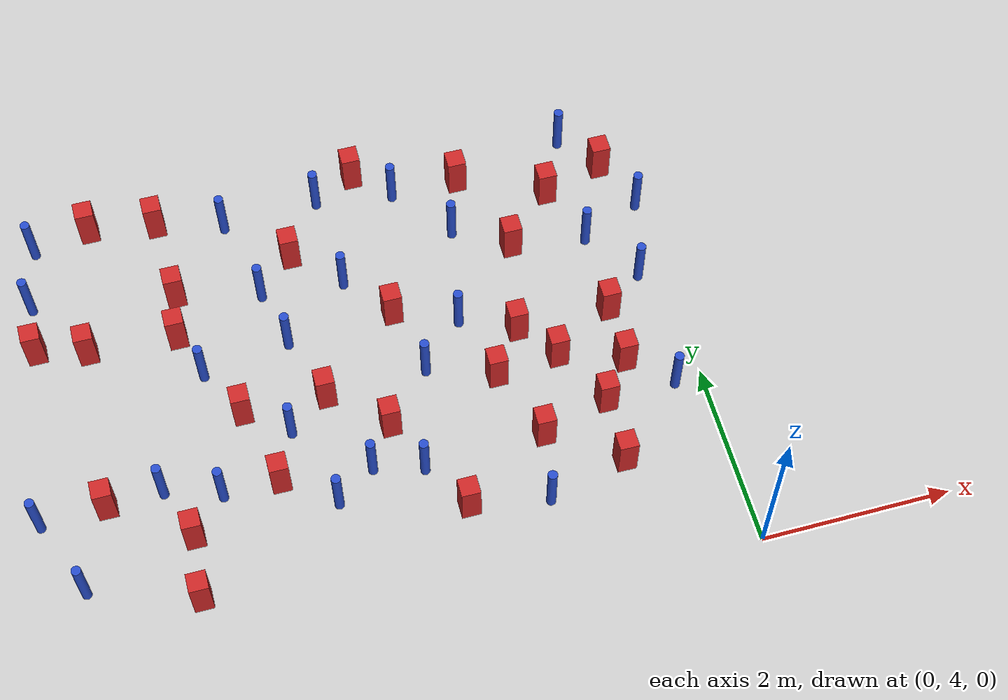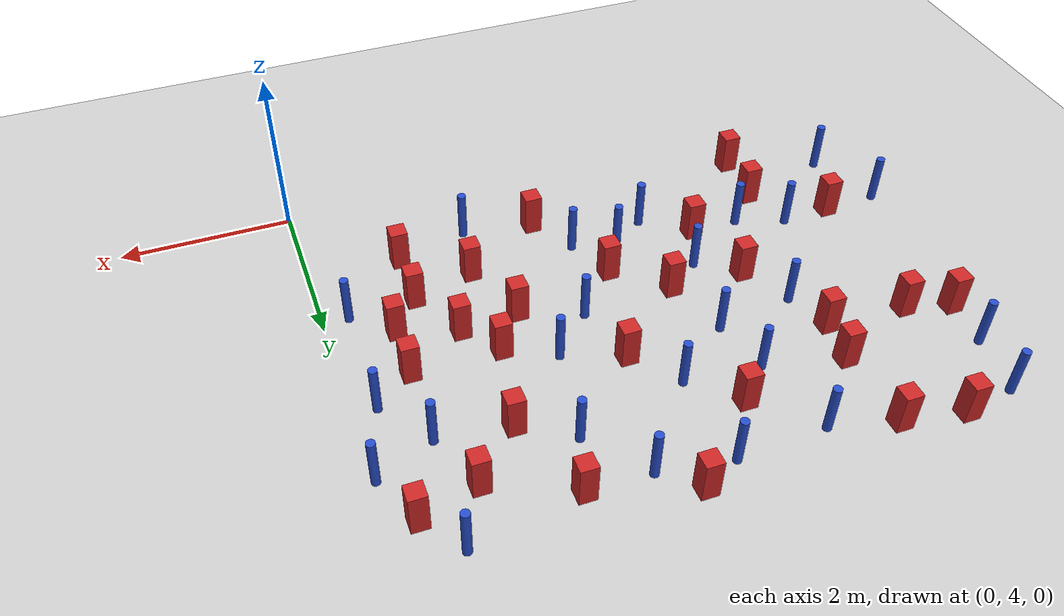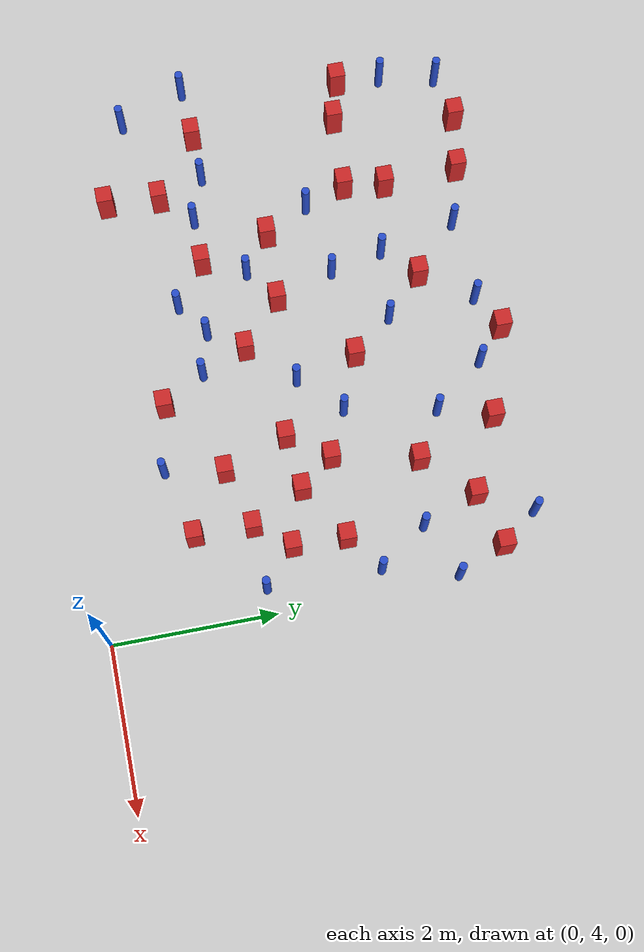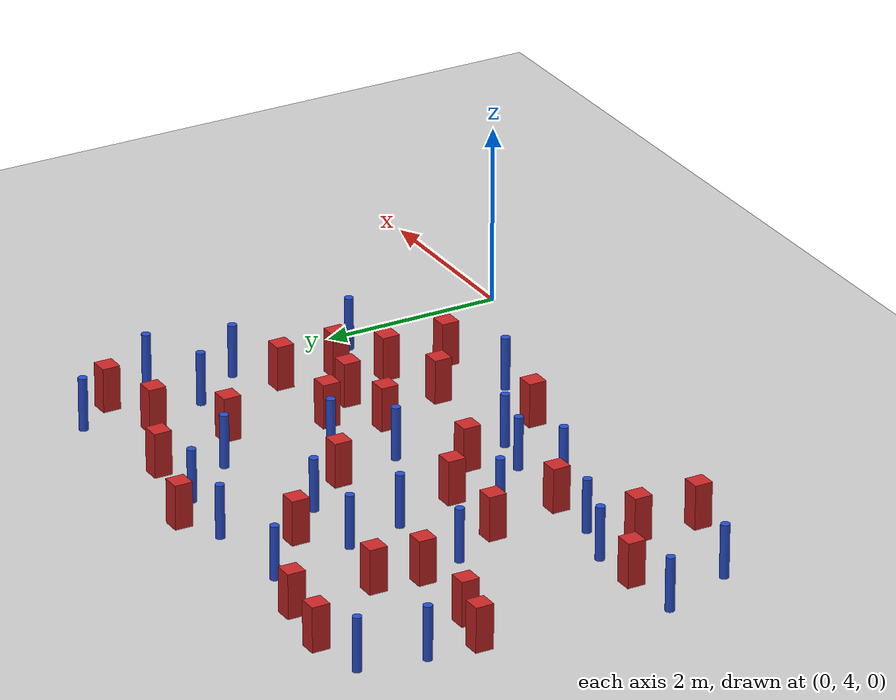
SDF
<sdf version="1.6">
 <world name="default">
  <model name="ground_plane">
   <static>1</static>
   <link name="link">
    <collision name="collision">
     <geometry><plane><normal>0 0 1</normal><size>100 100</size></plane></geometry>
     <surface><friction><ode><mu>100</mu><mu2>50</mu2></ode></friction></surface>
    </collision>
    <visual name="visual">
     <cast_shadows>0</cast_shadows>
     <geometry><plane><normal>0 0 1</normal><size>100 100</size></plane></geometry>
     <material>
      <ambient>1.0 1.0 1.0 1.0</ambient>
      <diffuse>0.8 0.8 0.8 1.0</diffuse>
      <specular>0.01 0.01 0.01 1.000000</specular>
     </material>
    </visual>
   </link>
  </model>
  <model name="pole_obstacle6">
   <static>true</static>
   <pose>-6.68948350225 8.57907107979 -9.47619616065e-06 5.49618799737e-07 2.36310414065e-07 -1.55090534796e-07</pose>
   <link name="link">
    <pose>0 0 0.3 0 -0 0</pose>
    <inertial>
     <mass>1</mass>
     <inertia><ixx>0.145833</ixx><ixy>0</ixy><ixz>0</ixz><iyy>0.145833</iyy><iyz>0</iyz><izz>0.125</izz></inertia>
    </inertial>
    <collision name="collision">
     <geometry><cylinder><radius>0.05</radius><length>.6</length></cylinder></geometry>
    </collision>
    <visual name="visual">
     <geometry><cylinder><radius>0.05</radius><length>.6</length></cylinder></geometry>
     <material>
      <script><name>Gazebo/Blue</name><uri>file://media/materials/scripts/gazebo.material</uri></script>
     </material>
    </visual>
   </link>
  </model>
  <model name="square_post_obstacle8">
   <static>true</static>
   <pose>-1.73617687077 6.9707020237 -6.11067671241e-07 -5.50515727128e-06 -8.79689657224e-07 2.37013304536e-05</pose>
   <link name="link">
    <pose>0 0 0.25 0 -0 0</pose>
    <inertial>
     <mass>100</mass>
     <inertia>
      <ixx>0.166667</ixx>
      <ixy>0</ixy>
      <ixz>0</ixz>
      <iyy>0.166667</iyy>
      <iyz>0</iyz>
      <izz>0.166667</izz>
     </inertia>
    </inertial>
    <collision name="collision"><geometry><box><size>.2 .2 .5</size></box></geometry></collision>
    <visual name="visual">
     <geometry><box><size>.2 .2 .5</size></box></geometry>
     <material>
      <script><name>Gazebo/Red</name><uri>file://media/materials/scripts/gazebo.material</uri></script>
     </material>
    </visual>
   </link>
  </model>
  <model name="square_post_obstacle11">
   <static>true</static>
   <pose>-4.53768418567 5.86658288188 -6.11067671241e-07 -5.50515727128e-06 -8.79689657224e-07 2.37013304536e-05</pose>
   <link name="link">
    <pose>0 0 0.25 0 -0 0</pose>
    <inertial>
     <mass>100</mass>
     <inertia>
      <ixx>0.166667</ixx>
      <ixy>0</ixy>
      <ixz>0</ixz>
      <iyy>0.166667</iyy>
      <iyz>0</iyz>
      <izz>0.166667</izz>
     </inertia>
    </inertial>
    <collision name="collision"><geometry><box><size>.2 .2 .5</size></box></geometry></collision>
    <visual name="visual">
     <geometry><box><size>.2 .2 .5</size></box></geometry>
     <material>
      <script><name>Gazebo/Red</name><uri>file://media/materials/scripts/gazebo.material</uri></script>
     </material>
    </visual>
   </link>
  </model>
  <model name="pole_obstacle19">
   <static>true</static>
   <pose>-6.97491790486 6.00762410917 -9.47619616065e-06 5.49618799737e-07 2.36310414037e-07 -1.55090534814e-07</pose>
   <link name="link">
    <pose>0 0 0.3 0 -0 0</pose>
    <inertial>
     <mass>1</mass>
     <inertia><ixx>0.145833</ixx><ixy>0</ixy><ixz>0</ixz><iyy>0.145833</iyy><iyz>0</iyz><izz>0.125</izz></inertia>
    </inertial>
    <collision name="collision">
     <geometry><cylinder><radius>0.05</radius><length>.6</length></cylinder></geometry>
    </collision>
    <visual name="visual">
     <geometry><cylinder><radius>0.05</radius><length>.6</length></cylinder></geometry>
     <material>
      <script><name>Gazebo/Blue</name><uri>file://media/materials/scripts/gazebo.material</uri></script>
     </material>
    </visual>
   </link>
  </model>
  <model name="pole_obstacle29">
   <static>true</static>
   <pose>-2.60865008319 9.01231032678 -9.4761961606e-06 5.49618799729e-07 2.36310414e-07 -1.55090534824e-07</pose>
   <link name="link">
    <pose>0 0 0.3 0 -0 0</pose>
    <inertial>
     <mass>1</mass>
     <inertia><ixx>0.145833</ixx><ixy>0</ixy><ixz>0</ixz><iyy>0.145833</iyy><iyz>0</iyz><izz>0.125</izz></inertia>
    </inertial>
    <collision name="collision">
     <geometry><cylinder><radius>0.05</radius><length>.6</length></cylinder></geometry>
    </collision>
    <visual name="visual">
     <geometry><cylinder><radius>0.05</radius><length>.6</length></cylinder></geometry>
     <material>
      <script><name>Gazebo/Blue</name><uri>file://media/materials/scripts/gazebo.material</uri></script>
     </material>
    </visual>
   </link>
  </model>
  <model name="square_post_obstacle23">
   <static>true</static>
   <pose>-1.40937178551 6.54757160745 -6.11067671241e-07 -5.50515727128e-06 -8.79689657224e-07 2.37013304536e-05</pose>
   <link name="link">
    <pose>0 0 0.25 0 -0 0</pose>
    <inertial>
     <mass>100</mass>
     <inertia>
      <ixx>0.166667</ixx>
      <ixy>0</ixy>
      <ixz>0</ixz>
      <iyy>0.166667</iyy>
      <iyz>0</iyz>
      <izz>0.166667</izz>
     </inertia>
    </inertial>
    <collision name="collision"><geometry><box><size>.2 .2 .5</size></box></geometry></collision>
    <visual name="visual">
     <geometry><box><size>.2 .2 .5</size></box></geometry>
     <material>
      <script><name>Gazebo/Red</name><uri>file://media/materials/scripts/gazebo.material</uri></script>
     </material>
    </visual>
   </link>
  </model>
  <model name="square_post_obstacle26">
   <static>true</static>
   <pose>-1.5133203125 8.01290717009 -6.11067671241e-07 -5.50515727128e-06 -8.79689657224e-07 2.37013304536e-05</pose>
   <link name="link">
    <pose>0 0 0.25 0 -0 0</pose>
    <inertial>
     <mass>100</mass>
     <inertia>
      <ixx>0.166667</ixx>
      <ixy>0</ixy>
      <ixz>0</ixz>
      <iyy>0.166667</iyy>
      <iyz>0</iyz>
      <izz>0.166667</izz>
     </inertia>
    </inertial>
    <collision name="collision"><geometry><box><size>.2 .2 .5</size></box></geometry></collision>
    <visual name="visual">
     <geometry><box><size>.2 .2 .5</size></box></geometry>
     <material>
      <script><name>Gazebo/Red</name><uri>file://media/materials/scripts/gazebo.material</uri></script>
     </material>
    </visual>
   </link>
  </model>
  <model name="pole_obstacle32">
   <static>true</static>
   <pose>-4.31000271178 6.39564912685 -9.47619616065e-06 5.49618799737e-07 2.36310414037e-07 -1.55090534814e-07</pose>
   <link name="link">
    <pose>0 0 0.3 0 -0 0</pose>
    <inertial>
     <mass>1</mass>
     <inertia><ixx>0.145833</ixx><ixy>0</ixy><ixz>0</ixz><iyy>0.145833</iyy><iyz>0</iyz><izz>0.125</izz></inertia>
    </inertial>
    <collision name="collision">
     <geometry><cylinder><radius>0.05</radius><length>.6</length></cylinder></geometry>
    </collision>
    <visual name="visual">
     <geometry><cylinder><radius>0.05</radius><length>.6</length></cylinder></geometry>
     <material>
      <script><name>Gazebo/Blue</name><uri>file://media/materials/scripts/gazebo.material</uri></script>
     </material>
    </visual>
   </link>
  </model>
  <model name="square_post_obstacle28">
   <static>true</static>
   <pose>-5.49644595359 5.48308350134 -6.11067671241e-07 -5.50515727128e-06 -8.79689657224e-07 2.37013304536e-05</pose>
   <link name="link">
    <pose>0 0 0.25 0 -0 0</pose>
    <inertial>
     <mass>100</mass>
     <inertia>
      <ixx>0.166667</ixx>
      <ixy>0</ixy>
      <ixz>0</ixz>
      <iyy>0.166667</iyy>
      <iyz>0</iyz>
      <izz>0.166667</izz>
     </inertia>
    </inertial>
    <collision name="collision"><geometry><box><size>.2 .2 .5</size></box></geometry></collision>
    <visual name="visual">
     <geometry><box><size>.2 .2 .5</size></box></geometry>
     <material>
      <script><name>Gazebo/Red</name><uri>file://media/materials/scripts/gazebo.material</uri></script>
     </material>
    </visual>
   </link>
  </model>
  <model name="pole_obstacle33">
   <static>true</static>
   <pose>-4.12117602522 7.44639903596 -9.47619616065e-06 5.49618799737e-07 2.36310414037e-07 -1.55090534814e-07</pose>
   <link name="link">
    <pose>0 0 0.3 0 -0 0</pose>
    <inertial>
     <mass>1</mass>
     <inertia><ixx>0.145833</ixx><ixy>0</ixy><ixz>0</ixz><iyy>0.145833</iyy><iyz>0</iyz><izz>0.125</izz></inertia>
    </inertial>
    <collision name="collision">
     <geometry><cylinder><radius>0.05</radius><length>.6</length></cylinder></geometry>
    </collision>
    <visual name="visual">
     <geometry><cylinder><radius>0.05</radius><length>.6</length></cylinder></geometry>
     <material>
      <script><name>Gazebo/Blue</name><uri>file://media/materials/scripts/gazebo.material</uri></script>
     </material>
    </visual>
   </link>
  </model>
  <model name="square_post_obstacle30">
   <static>true</static>
   <pose>-3.87234864193 8.49808763571 -6.11067671241e-07 -5.50515727128e-06 -8.79689657224e-07 2.37013304536e-05</pose>
   <link name="link">
    <pose>0 0 0.25 0 -0 0</pose>
    <inertial>
     <mass>100</mass>
     <inertia>
      <ixx>0.166667</ixx>
      <ixy>0</ixy>
      <ixz>0</ixz>
      <iyy>0.166667</iyy>
      <iyz>0</iyz>
      <izz>0.166667</izz>
     </inertia>
    </inertial>
    <collision name="collision"><geometry><box><size>.2 .2 .5</size></box></geometry></collision>
    <visual name="visual">
     <geometry><box><size>.2 .2 .5</size></box></geometry>
     <material>
      <script><name>Gazebo/Red</name><uri>file://media/materials/scripts/gazebo.material</uri></script>
     </material>
    </visual>
   </link>
  </model>
  <model name="pole_obstacle41">
   <static>true</static>
   <pose>-5.13265383365 5.86492897946 -9.47619616065e-06 5.49618799737e-07 2.36310414037e-07 -1.55090534814e-07</pose>
   <link name="link">
    <pose>0 0 0.3 0 -0 0</pose>
    <inertial>
     <mass>1</mass>
     <inertia><ixx>0.145833</ixx><ixy>0</ixy><ixz>0</ixz><iyy>0.145833</iyy><iyz>0</iyz><izz>0.125</izz></inertia>
    </inertial>
    <collision name="collision">
     <geometry><cylinder><radius>0.05</radius><length>.6</length></cylinder></geometry>
    </collision>
    <visual name="visual">
     <geometry><cylinder><radius>0.05</radius><length>.6</length></cylinder></geometry>
     <material>
      <script><name>Gazebo/Blue</name><uri>file://media/materials/scripts/gazebo.material</uri></script>
     </material>
    </visual>
   </link>
  </model>
  <model name="pole_obstacle43">
   <static>true</static>
   <pose>-3.59772897499 5.76761094473 -9.47619616065e-06 5.49618799738e-07 2.3631041406e-07 -1.55090534801e-07</pose>
   <link name="link">
    <pose>0 0 0.3 0 -0 0</pose>
    <inertial>
     <mass>1</mass>
     <inertia><ixx>0.145833</ixx><ixy>0</ixy><ixz>0</ixz><iyy>0.145833</iyy><iyz>0</iyz><izz>0.125</izz></inertia>
    </inertial>
    <collision name="collision">
     <geometry><cylinder><radius>0.05</radius><length>.6</length></cylinder></geometry>
    </collision>
    <visual name="visual">
     <geometry><cylinder><radius>0.05</radius><length>.6</length></cylinder></geometry>
     <material>
      <script><name>Gazebo/Blue</name><uri>file://media/materials/scripts/gazebo.material</uri></script>
     </material>
    </visual>
   </link>
  </model>
  <model name="pole_obstacle57">
   <static>true</static>
   <pose>-0.62816462132 9.23487591375 -9.47619616065e-06 5.49618799737e-07 2.36310414038e-07 -1.55090534813e-07</pose>
   <link name="link">
    <pose>0 0 0.3 0 -0 0</pose>
    <inertial>
     <mass>1</mass>
     <inertia><ixx>0.145833</ixx><ixy>0</ixy><ixz>0</ixz><iyy>0.145833</iyy><iyz>0</iyz><izz>0.125</izz></inertia>
    </inertial>
    <collision name="collision">
     <geometry><cylinder><radius>0.05</radius><length>.6</length></cylinder></geometry>
    </collision>
    <visual name="visual">
     <geometry><cylinder><radius>0.05</radius><length>.6</length></cylinder></geometry>
     <material>
      <script><name>Gazebo/Blue</name><uri>file://media/materials/scripts/gazebo.material</uri></script>
     </material>
    </visual>
   </link>
  </model>
  <model name="pole_obstacle58">
   <static>true</static>
   <pose>-0.696575415242 7.89770977077 -9.47619616065e-06 5.49618799737e-07 2.36310414065e-07 -1.55090534796e-07</pose>
   <link name="link">
    <pose>0 0 0.3 0 -0 0</pose>
    <inertial>
     <mass>1</mass>
     <inertia><ixx>0.145833</ixx><ixy>0</ixy><ixz>0</ixz><iyy>0.145833</iyy><iyz>0</iyz><izz>0.125</izz></inertia>
    </inertial>
    <collision name="collision">
     <geometry><cylinder><radius>0.05</radius><length>.6</length></cylinder></geometry>
    </collision>
    <visual name="visual">
     <geometry><cylinder><radius>0.05</radius><length>.6</length></cylinder></geometry>
     <material>
      <script><name>Gazebo/Blue</name><uri>file://media/materials/scripts/gazebo.material</uri></script>
     </material>
    </visual>
   </link>
  </model>
  <model name="square_post_obstacle45">
   <static>true</static>
   <pose>-0.958018034965 8.58951679383 -6.11067671241e-07 -5.50515727128e-06 -8.79689657224e-07 2.37013304536e-05</pose>
   <link name="link">
    <pose>0 0 0.25 0 -0 0</pose>
    <inertial>
     <mass>100</mass>
     <inertia>
      <ixx>0.166667</ixx>
      <ixy>0</ixy>
      <ixz>0</ixz>
      <iyy>0.166667</iyy>
      <iyz>0</iyz>
      <izz>0.166667</izz>
     </inertia>
    </inertial>
    <collision name="collision"><geometry><box><size>.2 .2 .5</size></box></geometry></collision>
    <visual name="visual">
     <geometry><box><size>.2 .2 .5</size></box></geometry>
     <material>
      <script><name>Gazebo/Red</name><uri>file://media/materials/scripts/gazebo.material</uri></script>
     </material>
    </visual>
   </link>
  </model>
  <model name="square_post_obstacle47">
   <static>true</static>
   <pose>-1.87746923019 9.00634286019 -6.11067671241e-07 -5.50515727128e-06 -8.79689657224e-07 2.37013304536e-05</pose>
   <link name="link">
    <pose>0 0 0.25 0 -0 0</pose>
    <inertial>
     <mass>100</mass>
     <inertia>
      <ixx>0.166667</ixx>
      <ixy>0</ixy>
      <ixz>0</ixz>
      <iyy>0.166667</iyy>
      <iyz>0</iyz>
      <izz>0.166667</izz>
     </inertia>
    </inertial>
    <collision name="collision"><geometry><box><size>.2 .2 .5</size></box></geometry></collision>
    <visual name="visual">
     <geometry><box><size>.2 .2 .5</size></box></geometry>
     <material>
      <script><name>Gazebo/Red</name><uri>file://media/materials/scripts/gazebo.material</uri></script>
     </material>
    </visual>
   </link>
  </model>
  <model name="pole_obstacle65">
   <static>true</static>
   <pose>-5.71199273015 6.057088107 -9.47619616065e-06 5.49618799737e-07 2.36310414037e-07 -1.55090534814e-07</pose>
   <link name="link">
    <pose>0 0 0.3 0 -0 0</pose>
    <inertial>
     <mass>1</mass>
     <inertia><ixx>0.145833</ixx><ixy>0</ixy><ixz>0</ixz><iyy>0.145833</iyy><iyz>0</iyz><izz>0.125</izz></inertia>
    </inertial>
    <collision name="collision">
     <geometry><cylinder><radius>0.05</radius><length>.6</length></cylinder></geometry>
    </collision>
    <visual name="visual">
     <geometry><cylinder><radius>0.05</radius><length>.6</length></cylinder></geometry>
     <material>
      <script><name>Gazebo/Blue</name><uri>file://media/materials/scripts/gazebo.material</uri></script>
     </material>
    </visual>
   </link>
  </model>
  <model name="square_post_obstacle51">
   <static>true</static>
   <pose>-0.722067783515 6.96273240908 -6.11067671241e-07 -5.50515727128e-06 -8.79689657224e-07 2.37013304536e-05</pose>
   <link name="link">
    <pose>0 0 0.25 0 -0 0</pose>
    <inertial>
     <mass>100</mass>
     <inertia>
      <ixx>0.166667</ixx>
      <ixy>0</ixy>
      <ixz>0</ixz>
      <iyy>0.166667</iyy>
      <iyz>0</iyz>
      <izz>0.166667</izz>
     </inertia>
    </inertial>
    <collision name="collision"><geometry><box><size>.2 .2 .5</size></box></geometry></collision>
    <visual name="visual">
     <geometry><box><size>.2 .2 .5</size></box></geometry>
     <material>
      <script><name>Gazebo/Red</name><uri>file://media/materials/scripts/gazebo.material</uri></script>
     </material>
    </visual>
   </link>
  </model>
  <model name="pole_obstacle82">
   <static>true</static>
   <pose>-5.06186464293 7.2954607931 -9.47619616065e-06 5.49618799737e-07 2.36310414037e-07 -1.55090534814e-07</pose>
   <link name="link">
    <pose>0 0 0.3 0 -0 0</pose>
    <inertial>
     <mass>1</mass>
     <inertia><ixx>0.145833</ixx><ixy>0</ixy><ixz>0</ixz><iyy>0.145833</iyy><iyz>0</iyz><izz>0.125</izz></inertia>
    </inertial>
    <collision name="collision">
     <geometry><cylinder><radius>0.05</radius><length>.6</length></cylinder></geometry>
    </collision>
    <visual name="visual">
     <geometry><cylinder><radius>0.05</radius><length>.6</length></cylinder></geometry>
     <material>
      <script><name>Gazebo/Blue</name><uri>file://media/materials/scripts/gazebo.material</uri></script>
     </material>
    </visual>
   </link>
  </model>
  <model name="square_post_obstacle72">
   <static>true</static>
   <pose>-3.87537074599 6.70423240617 -6.11067671241e-07 -5.50515727128e-06 -8.79689657224e-07 2.37013304536e-05</pose>
   <link name="link">
    <pose>0 0 0.25 0 -0 0</pose>
    <inertial>
     <mass>100</mass>
     <inertia>
      <ixx>0.166667</ixx>
      <ixy>0</ixy>
      <ixz>0</ixz>
      <iyy>0.166667</iyy>
      <iyz>0</iyz>
      <izz>0.166667</izz>
     </inertia>
    </inertial>
    <collision name="collision"><geometry><box><size>.2 .2 .5</size></box></geometry></collision>
    <visual name="visual">
     <geometry><box><size>.2 .2 .5</size></box></geometry>
     <material>
      <script><name>Gazebo/Red</name><uri>file://media/materials/scripts/gazebo.material</uri></script>
     </material>
    </visual>
   </link>
  </model>
  <model name="square_post_obstacle82">
   <static>true</static>
   <pose>-1.06783085861 5.89339742532 -6.11067671241e-07 -5.50515727128e-06 -8.79689657224e-07 2.37013304536e-05</pose>
   <link name="link">
    <pose>0 0 0.25 0 -0 0</pose>
    <inertial>
     <mass>100</mass>
     <inertia>
      <ixx>0.166667</ixx>
      <ixy>0</ixy>
      <ixz>0</ixz>
      <iyy>0.166667</iyy>
      <iyz>0</iyz>
      <izz>0.166667</izz>
     </inertia>
    </inertial>
    <collision name="collision"><geometry><box><size>.2 .2 .5</size></box></geometry></collision>
    <visual name="visual">
     <geometry><box><size>.2 .2 .5</size></box></geometry>
     <material>
      <script><name>Gazebo/Red</name><uri>file://media/materials/scripts/gazebo.material</uri></script>
     </material>
    </visual>
   </link>
  </model>
  <model name="square_post_obstacle84">
   <static>true</static>
   <pose>-1.80079966404 5.68414034855 -6.11067671241e-07 -5.50515727128e-06 -8.79689657224e-07 2.37013304536e-05</pose>
   <link name="link">
    <pose>0 0 0.25 0 -0 0</pose>
    <inertial>
     <mass>100</mass>
     <inertia>
      <ixx>0.166667</ixx>
      <ixy>0</ixy>
      <ixz>0</ixz>
      <iyy>0.166667</iyy>
      <iyz>0</iyz>
      <izz>0.166667</izz>
     </inertia>
    </inertial>
    <collision name="collision"><geometry><box><size>.2 .2 .5</size></box></geometry></collision>
    <visual name="visual">
     <geometry><box><size>.2 .2 .5</size></box></geometry>
     <material>
      <script><name>Gazebo/Red</name><uri>file://media/materials/scripts/gazebo.material</uri></script>
     </material>
    </visual>
   </link>
  </model>
  <model name="pole_obstacle91">
   <static>true</static>
   <pose>-3.44651027617 9.13476570649 -9.4761961606e-06 5.49618799729e-07 2.36310414e-07 -1.55090534824e-07</pose>
   <link name="link">
    <pose>0 0 0.3 0 -0 0</pose>
    <inertial>
     <mass>1</mass>
     <inertia><ixx>0.145833</ixx><ixy>0</ixy><ixz>0</ixz><iyy>0.145833</iyy><iyz>0</iyz><izz>0.125</izz></inertia>
    </inertial>
    <collision name="collision">
     <geometry><cylinder><radius>0.05</radius><length>.6</length></cylinder></geometry>
    </collision>
    <visual name="visual">
     <geometry><cylinder><radius>0.05</radius><length>.6</length></cylinder></geometry>
     <material>
      <script><name>Gazebo/Blue</name><uri>file://media/materials/scripts/gazebo.material</uri></script>
     </material>
    </visual>
   </link>
  </model>
  <model name="square_post_obstacle86">
   <static>true</static>
   <pose>-5.54675294454 4.80907476312 -6.11067671241e-07 -5.50515727128e-06 -8.79689657224e-07 2.37013304536e-05</pose>
   <link name="link">
    <pose>0 0 0.25 0 -0 0</pose>
    <inertial>
     <mass>100</mass>
     <inertia>
      <ixx>0.166667</ixx>
      <ixy>0</ixy>
      <ixz>0</ixz>
      <iyy>0.166667</iyy>
      <iyz>0</iyz>
      <izz>0.166667</izz>
     </inertia>
    </inertial>
    <collision name="collision"><geometry><box><size>.2 .2 .5</size></box></geometry></collision>
    <visual name="visual">
     <geometry><box><size>.2 .2 .5</size></box></geometry>
     <material>
      <script><name>Gazebo/Red</name><uri>file://media/materials/scripts/gazebo.material</uri></script>
     </material>
    </visual>
   </link>
  </model>
  <model name="pole_obstacle97">
   <static>true</static>
   <pose>-0.301202601631 5.92056603571 -9.47619616065e-06 5.49618799737e-07 2.36310414065e-07 -1.55090534796e-07</pose>
   <link name="link">
    <pose>0 0 0.3 0 -0 0</pose>
    <inertial>
     <mass>1</mass>
     <inertia><ixx>0.145833</ixx><ixy>0</ixy><ixz>0</ixz><iyy>0.145833</iyy><iyz>0</iyz><izz>0.125</izz></inertia>
    </inertial>
    <collision name="collision">
     <geometry><cylinder><radius>0.05</radius><length>.6</length></cylinder></geometry>
    </collision>
    <visual name="visual">
     <geometry><cylinder><radius>0.05</radius><length>.6</length></cylinder></geometry>
     <material>
      <script><name>Gazebo/Blue</name><uri>file://media/materials/scripts/gazebo.material</uri></script>
     </material>
    </visual>
   </link>
  </model>
  <model name="square_post_obstacle91">
   <static>true</static>
   <pose>-6.29160225455 6.03764779244 -6.11067671241e-07 -5.50515727128e-06 -8.79689657224e-07 2.37013304536e-05</pose>
   <link name="link">
    <pose>0 0 0.25 0 -0 0</pose>
    <inertial>
     <mass>100</mass>
     <inertia>
      <ixx>0.166667</ixx>
      <ixy>0</ixy>
      <ixz>0</ixz>
      <iyy>0.166667</iyy>
      <iyz>0</iyz>
      <izz>0.166667</izz>
     </inertia>
    </inertial>
    <collision name="collision"><geometry><box><size>.2 .2 .5</size></box></geometry></collision>
    <visual name="visual">
     <geometry><box><size>.2 .2 .5</size></box></geometry>
     <material>
      <script><name>Gazebo/Red</name><uri>file://media/materials/scripts/gazebo.material</uri></script>
     </material>
    </visual>
   </link>
  </model>
  <model name="pole_obstacle104">
   <static>true</static>
   <pose>-2.08895503247 8.36375195955 -9.4761961606e-06 5.49618799729e-07 2.36310414e-07 -1.55090534824e-07</pose>
   <link name="link">
    <pose>0 0 0.3 0 -0 0</pose>
    <inertial>
     <mass>1</mass>
     <inertia><ixx>0.145833</ixx><ixy>0</ixy><ixz>0</ixz><iyy>0.145833</iyy><iyz>0</iyz><izz>0.125</izz></inertia>
    </inertial>
    <collision name="collision">
     <geometry><cylinder><radius>0.05</radius><length>.6</length></cylinder></geometry>
    </collision>
    <visual name="visual">
     <geometry><cylinder><radius>0.05</radius><length>.6</length></cylinder></geometry>
     <material>
      <script><name>Gazebo/Blue</name><uri>file://media/materials/scripts/gazebo.material</uri></script>
     </material>
    </visual>
   </link>
  </model>
  <model name="square_post_obstacle100">
   <static>true</static>
   <pose>-5.1652037388 8.3297083454 -6.11067671241e-07 -5.50515727128e-06 -8.79689657224e-07 2.37013304536e-05</pose>
   <link name="link">
    <pose>0 0 0.25 0 -0 0</pose>
    <inertial>
     <mass>100</mass>
     <inertia>
      <ixx>0.166667</ixx>
      <ixy>0</ixy>
      <ixz>0</ixz>
      <iyy>0.166667</iyy>
      <iyz>0</iyz>
      <izz>0.166667</izz>
     </inertia>
    </inertial>
    <collision name="collision"><geometry><box><size>.2 .2 .5</size></box></geometry></collision>
    <visual name="visual">
     <geometry><box><size>.2 .2 .5</size></box></geometry>
     <material>
      <script><name>Gazebo/Red</name><uri>file://media/materials/scripts/gazebo.material</uri></script>
     </material>
    </visual>
   </link>
  </model>
  <model name="square_post_obstacle103">
   <static>true</static>
   <pose>-5.24078655684 7.81390537989 -6.11067671241e-07 -5.50515727128e-06 -8.79689657224e-07 2.37013304536e-05</pose>
   <link name="link">
    <pose>0 0 0.25 0 -0 0</pose>
    <inertial>
     <mass>100</mass>
     <inertia>
      <ixx>0.166667</ixx>
      <ixy>0</ixy>
      <ixz>0</ixz>
      <iyy>0.166667</iyy>
      <iyz>0</iyz>
      <izz>0.166667</izz>
     </inertia>
    </inertial>
    <collision name="collision"><geometry><box><size>.2 .2 .5</size></box></geometry></collision>
    <visual name="visual">
     <geometry><box><size>.2 .2 .5</size></box></geometry>
     <material>
      <script><name>Gazebo/Red</name><uri>file://media/materials/scripts/gazebo.material</uri></script>
     </material>
    </visual>
   </link>
  </model>
  <model name="pole_obstacle114">
   <static>true</static>
   <pose>-4.49370950757 9.07873421479 -9.47619616065e-06 5.49618799737e-07 2.36310414065e-07 -1.55090534796e-07</pose>
   <link name="link">
    <pose>0 0 0.3 0 -0 0</pose>
    <inertial>
     <mass>1</mass>
     <inertia><ixx>0.145833</ixx><ixy>0</ixy><ixz>0</ixz><iyy>0.145833</iyy><iyz>0</iyz><izz>0.125</izz></inertia>
    </inertial>
    <collision name="collision">
     <geometry><cylinder><radius>0.05</radius><length>.6</length></cylinder></geometry>
    </collision>
    <visual name="visual">
     <geometry><cylinder><radius>0.05</radius><length>.6</length></cylinder></geometry>
     <material>
      <script><name>Gazebo/Blue</name><uri>file://media/materials/scripts/gazebo.material</uri></script>
     </material>
    </visual>
   </link>
  </model>
  <model name="square_post_obstacle114">
   <static>true</static>
   <pose>-0.289974778555 8.78052847352 -6.11067671241e-07 -5.50515727128e-06 -8.79689657224e-07 2.37013304536e-05</pose>
   <link name="link">
    <pose>0 0 0.25 0 -0 0</pose>
    <inertial>
     <mass>100</mass>
     <inertia>
      <ixx>0.166667</ixx>
      <ixy>0</ixy>
      <ixz>0</ixz>
      <iyy>0.166667</iyy>
      <iyz>0</iyz>
      <izz>0.166667</izz>
     </inertia>
    </inertial>
    <collision name="collision"><geometry><box><size>.2 .2 .5</size></box></geometry></collision>
    <visual name="visual">
     <geometry><box><size>.2 .2 .5</size></box></geometry>
     <material>
      <script><name>Gazebo/Red</name><uri>file://media/materials/scripts/gazebo.material</uri></script>
     </material>
    </visual>
   </link>
  </model>
  <model name="pole_obstacle116">
   <static>true</static>
   <pose>-6.55470133196 9.28800998622 -9.47619616065e-06 5.49618799737e-07 2.36310414065e-07 -1.55090534796e-07</pose>
   <link name="link">
    <pose>0 0 0.3 0 -0 0</pose>
    <inertial>
     <mass>1</mass>
     <inertia><ixx>0.145833</ixx><ixy>0</ixy><ixz>0</ixz><iyy>0.145833</iyy><iyz>0</iyz><izz>0.125</izz></inertia>
    </inertial>
    <collision name="collision">
     <geometry><cylinder><radius>0.05</radius><length>.6</length></cylinder></geometry>
    </collision>
    <visual name="visual">
     <geometry><cylinder><radius>0.05</radius><length>.6</length></cylinder></geometry>
     <material>
      <script><name>Gazebo/Blue</name><uri>file://media/materials/scripts/gazebo.material</uri></script>
     </material>
    </visual>
   </link>
  </model>
  <model name="square_post_obstacle119">
   <static>true</static>
   <pose>-2.75379816087 5.10405712457 -6.11067671241e-07 -5.50515727128e-06 -8.79689657224e-07 2.37013304536e-05</pose>
   <link name="link">
    <pose>0 0 0.25 0 -0 0</pose>
    <inertial>
     <mass>100</mass>
     <inertia>
      <ixx>0.166667</ixx>
      <ixy>0</ixy>
      <ixz>0</ixz>
      <iyy>0.166667</iyy>
      <iyz>0</iyz>
      <izz>0.166667</izz>
     </inertia>
    </inertial>
    <collision name="collision"><geometry><box><size>.2 .2 .5</size></box></geometry></collision>
    <visual name="visual">
     <geometry><box><size>.2 .2 .5</size></box></geometry>
     <material>
      <script><name>Gazebo/Red</name><uri>file://media/materials/scripts/gazebo.material</uri></script>
     </material>
    </visual>
   </link>
  </model>
  <model name="square_post_obstacle120">
   <static>true</static>
   <pose>-3.3056040412 6.19992077043 -6.11067671241e-07 -5.50515727128e-06 -8.79689657224e-07 2.37013304536e-05</pose>
   <link name="link">
    <pose>0 0 0.25 0 -0 0</pose>
    <inertial>
     <mass>100</mass>
     <inertia>
      <ixx>0.166667</ixx>
      <ixy>0</ixy>
      <ixz>0</ixz>
      <iyy>0.166667</iyy>
      <iyz>0</iyz>
      <izz>0.166667</izz>
     </inertia>
    </inertial>
    <collision name="collision"><geometry><box><size>.2 .2 .5</size></box></geometry></collision>
    <visual name="visual">
     <geometry><box><size>.2 .2 .5</size></box></geometry>
     <material>
      <script><name>Gazebo/Red</name><uri>file://media/materials/scripts/gazebo.material</uri></script>
     </material>
    </visual>
   </link>
  </model>
  <model name="square_post_obstacle121">
   <static>true</static>
   <pose>-2.96971306805 7.51220808766 -6.11067671241e-07 -5.50515727128e-06 -8.79689657224e-07 2.37013304536e-05</pose>
   <link name="link">
    <pose>0 0 0.25 0 -0 0</pose>
    <inertial>
     <mass>100</mass>
     <inertia>
      <ixx>0.166667</ixx>
      <ixy>0</ixy>
      <ixz>0</ixz>
      <iyy>0.166667</iyy>
      <iyz>0</iyz>
      <izz>0.166667</izz>
     </inertia>
    </inertial>
    <collision name="collision"><geometry><box><size>.2 .2 .5</size></box></geometry></collision>
    <visual name="visual">
     <geometry><box><size>.2 .2 .5</size></box></geometry>
     <material>
      <script><name>Gazebo/Red</name><uri>file://media/materials/scripts/gazebo.material</uri></script>
     </material>
    </visual>
   </link>
  </model>
  <model name="square_post_obstacle122">
   <static>true</static>
   <pose>-5.93550155818 9.39931456845 -6.11067671241e-07 -5.50515727128e-06 -8.79689657224e-07 2.37013304536e-05</pose>
   <link name="link">
    <pose>0 0 0.25 0 -0 0</pose>
    <inertial>
     <mass>100</mass>
     <inertia>
      <ixx>0.166667</ixx>
      <ixy>0</ixy>
      <ixz>0</ixz>
      <iyy>0.166667</iyy>
      <iyz>0</iyz>
      <izz>0.166667</izz>
     </inertia>
    </inertial>
    <collision name="collision"><geometry><box><size>.2 .2 .5</size></box></geometry></collision>
    <visual name="visual">
     <geometry><box><size>.2 .2 .5</size></box></geometry>
     <material>
      <script><name>Gazebo/Red</name><uri>file://media/materials/scripts/gazebo.material</uri></script>
     </material>
    </visual>
   </link>
  </model>
  <model name="pole_obstacle131">
   <static>true</static>
   <pose>-0.27443508593 7.30058413286 -9.47619616065e-06 5.49618799738e-07 2.36310414067e-07 -1.55090534795e-07</pose>
   <link name="link">
    <pose>0 0 0.3 0 -0 0</pose>
    <inertial>
     <mass>1</mass>
     <inertia><ixx>0.145833</ixx><ixy>0</ixy><ixz>0</ixz><iyy>0.145833</iyy><iyz>0</iyz><izz>0.125</izz></inertia>
    </inertial>
    <collision name="collision">
     <geometry><cylinder><radius>0.05</radius><length>.6</length></cylinder></geometry>
    </collision>
    <visual name="visual">
     <geometry><cylinder><radius>0.05</radius><length>.6</length></cylinder></geometry>
     <material>
      <script><name>Gazebo/Blue</name><uri>file://media/materials/scripts/gazebo.material</uri></script>
     </material>
    </visual>
   </link>
  </model>
  <model name="square_post_obstacle130">
   <static>true</static>
   <pose>-2.0905983607 6.48221728138 -6.11067671241e-07 -5.50515727128e-06 -8.79689657224e-07 2.37013304536e-05</pose>
   <link name="link">
    <pose>0 0 0.25 0 -0 0</pose>
    <inertial>
     <mass>100</mass>
     <inertia>
      <ixx>0.166667</ixx>
      <ixy>0</ixy>
      <ixz>0</ixz>
      <iyy>0.166667</iyy>
      <iyz>0</iyz>
      <izz>0.166667</izz>
     </inertia>
    </inertial>
    <collision name="collision"><geometry><box><size>.2 .2 .5</size></box></geometry></collision>
    <visual name="visual">
     <geometry><box><size>.2 .2 .5</size></box></geometry>
     <material>
      <script><name>Gazebo/Red</name><uri>file://media/materials/scripts/gazebo.material</uri></script>
     </material>
    </visual>
   </link>
  </model>
  <model name="pole_obstacle144">
   <static>true</static>
   <pose>-0.0318522035424 8.18996774804 -9.47619616065e-06 5.49618799737e-07 2.36310414035e-07 -1.55090534816e-07</pose>
   <link name="link">
    <pose>0 0 0.3 0 -0 0</pose>
    <inertial>
     <mass>1</mass>
     <inertia><ixx>0.145833</ixx><ixy>0</ixy><ixz>0</ixz><iyy>0.145833</iyy><iyz>0</iyz><izz>0.125</izz></inertia>
    </inertial>
    <collision name="collision">
     <geometry><cylinder><radius>0.05</radius><length>.6</length></cylinder></geometry>
    </collision>
    <visual name="visual">
     <geometry><cylinder><radius>0.05</radius><length>.6</length></cylinder></geometry>
     <material>
      <script><name>Gazebo/Blue</name><uri>file://media/materials/scripts/gazebo.material</uri></script>
     </material>
    </visual>
   </link>
  </model>
  <model name="square_post_obstacle140">
   <static>true</static>
   <pose>-6.18995117712 7.87084531416 -6.11067671241e-07 -5.50515727128e-06 -8.79689657224e-07 2.37013304536e-05</pose>
   <link name="link">
    <pose>0 0 0.25 0 -0 0</pose>
    <inertial>
     <mass>100</mass>
     <inertia>
      <ixx>0.166667</ixx>
      <ixy>0</ixy>
      <ixz>0</ixz>
      <iyy>0.166667</iyy>
      <iyz>0</iyz>
      <izz>0.166667</izz>
     </inertia>
    </inertial>
    <collision name="collision"><geometry><box><size>.2 .2 .5</size></box></geometry></collision>
    <visual name="visual">
     <geometry><box><size>.2 .2 .5</size></box></geometry>
     <material>
      <script><name>Gazebo/Red</name><uri>file://media/materials/scripts/gazebo.material</uri></script>
     </material>
    </visual>
   </link>
  </model>
  <model name="pole_obstacle147">
   <static>true</static>
   <pose>-2.79104834163 6.7491459623 -9.47619616065e-06 5.49618799738e-07 2.3631041406e-07 -1.55090534801e-07</pose>
   <link name="link">
    <pose>0 0 0.3 0 -0 0</pose>
    <inertial>
     <mass>1</mass>
     <inertia><ixx>0.145833</ixx><ixy>0</ixy><ixz>0</ixz><iyy>0.145833</iyy><iyz>0</iyz><izz>0.125</izz></inertia>
    </inertial>
    <collision name="collision">
     <geometry><cylinder><radius>0.05</radius><length>.6</length></cylinder></geometry>
    </collision>
    <visual name="visual">
     <geometry><cylinder><radius>0.05</radius><length>.6</length></cylinder></geometry>
     <material>
      <script><name>Gazebo/Blue</name><uri>file://media/materials/scripts/gazebo.material</uri></script>
     </material>
    </visual>
   </link>
  </model>
  <model name="square_post_obstacle149">
   <static>true</static>
   <pose>-1.08398101442 5.18842194916 -6.11067671241e-07 -5.50515727128e-06 -8.79689657224e-07 2.37013304536e-05</pose>
   <link name="link">
    <pose>0 0 0.25 0 -0 0</pose>
    <inertial>
     <mass>100</mass>
     <inertia>
      <ixx>0.166667</ixx>
      <ixy>0</ixy>
      <ixz>0</ixz>
      <iyy>0.166667</iyy>
      <iyz>0</iyz>
      <izz>0.166667</izz>
     </inertia>
    </inertial>
    <collision name="collision"><geometry><box><size>.2 .2 .5</size></box></geometry></collision>
    <visual name="visual">
     <geometry><box><size>.2 .2 .5</size></box></geometry>
     <material>
      <script><name>Gazebo/Red</name><uri>file://media/materials/scripts/gazebo.material</uri></script>
     </material>
    </visual>
   </link>
  </model>
  <model name="square_post_obstacle161">
   <static>true</static>
   <pose>-4.75577899696 6.73578835851 -6.11067671241e-07 -5.50515727128e-06 -8.79689657224e-07 2.37013304536e-05</pose>
   <link name="link">
    <pose>0 0 0.25 0 -0 0</pose>
    <inertial>
     <mass>100</mass>
     <inertia>
      <ixx>0.166667</ixx>
      <ixy>0</ixy>
      <ixz>0</ixz>
      <iyy>0.166667</iyy>
      <iyz>0</iyz>
      <izz>0.166667</izz>
     </inertia>
    </inertial>
    <collision name="collision"><geometry><box><size>.2 .2 .5</size></box></geometry></collision>
    <visual name="visual">
     <geometry><box><size>.2 .2 .5</size></box></geometry>
     <material>
      <script><name>Gazebo/Red</name><uri>file://media/materials/scripts/gazebo.material</uri></script>
     </material>
    </visual>
   </link>
  </model>
  <model name="square_post_obstacle164">
   <static>true</static>
   <pose>-2.99399663052 9.35703919177 -6.11067671241e-07 -5.50515727128e-06 -8.79689657224e-07 2.37013304536e-05</pose>
   <link name="link">
    <pose>0 0 0.25 0 -0 0</pose>
    <inertial>
     <mass>100</mass>
     <inertia>
      <ixx>0.166667</ixx>
      <ixy>0</ixy>
      <ixz>0</ixz>
      <iyy>0.166667</iyy>
      <iyz>0</iyz>
      <izz>0.166667</izz>
     </inertia>
    </inertial>
    <collision name="collision"><geometry><box><size>.2 .2 .5</size></box></geometry></collision>
    <visual name="visual">
     <geometry><box><size>.2 .2 .5</size></box></geometry>
     <material>
      <script><name>Gazebo/Red</name><uri>file://media/materials/scripts/gazebo.material</uri></script>
     </material>
    </visual>
   </link>
  </model>
  <model name="pole_obstacle171">
   <static>true</static>
   <pose>-1.9340826814 4.95772531326 -9.47619616065e-06 5.49618799737e-07 2.36310414061e-07 -1.550905348e-07</pose>
   <link name="link">
    <pose>0 0 0.3 0 -0 0</pose>
    <inertial>
     <mass>1</mass>
     <inertia><ixx>0.145833</ixx><ixy>0</ixy><ixz>0</ixz><iyy>0.145833</iyy><iyz>0</iyz><izz>0.125</izz></inertia>
    </inertial>
    <collision name="collision">
     <geometry><cylinder><radius>0.05</radius><length>.6</length></cylinder></geometry>
    </collision>
    <visual name="visual">
     <geometry><cylinder><radius>0.05</radius><length>.6</length></cylinder></geometry>
     <material>
      <script><name>Gazebo/Blue</name><uri>file://media/materials/scripts/gazebo.material</uri></script>
     </material>
    </visual>
   </link>
  </model>
  <model name="square_post_obstacle173">
   <static>true</static>
   <pose>-5.21663981885 9.27746224832 -6.11067671241e-07 -5.50515727128e-06 -8.79689657224e-07 2.37013304536e-05</pose>
   <link name="link">
    <pose>0 0 0.25 0 -0 0</pose>
    <inertial>
     <mass>100</mass>
     <inertia>
      <ixx>0.166667</ixx>
      <ixy>0</ixy>
      <ixz>0</ixz>
      <iyy>0.166667</iyy>
      <iyz>0</iyz>
      <izz>0.166667</izz>
     </inertia>
    </inertial>
    <collision name="collision"><geometry><box><size>.2 .2 .5</size></box></geometry></collision>
    <visual name="visual">
     <geometry><box><size>.2 .2 .5</size></box></geometry>
     <material>
      <script><name>Gazebo/Red</name><uri>file://media/materials/scripts/gazebo.material</uri></script>
     </material>
    </visual>
   </link>
  </model>
  <model name="pole_obstacle183">
   <static>true</static>
   <pose>-6.64197947309 5.17536857614 -9.47619616065e-06 5.49618799737e-07 2.36310414037e-07 -1.55090534814e-07</pose>
   <link name="link">
    <pose>0 0 0.3 0 -0 0</pose>
    <inertial>
     <mass>1</mass>
     <inertia><ixx>0.145833</ixx><ixy>0</ixy><ixz>0</ixz><iyy>0.145833</iyy><iyz>0</iyz><izz>0.125</izz></inertia>
    </inertial>
    <collision name="collision">
     <geometry><cylinder><radius>0.05</radius><length>.6</length></cylinder></geometry>
    </collision>
    <visual name="visual">
     <geometry><cylinder><radius>0.05</radius><length>.6</length></cylinder></geometry>
     <material>
      <script><name>Gazebo/Blue</name><uri>file://media/materials/scripts/gazebo.material</uri></script>
     </material>
    </visual>
   </link>
  </model>
  <model name="pole_obstacle184">
   <static>true</static>
   <pose>-3.08112831188 5.62722209956 -9.4761961606e-06 5.49618799729e-07 2.36310414006e-07 -1.55090534822e-07</pose>
   <link name="link">
    <pose>0 0 0.3 0 -0 0</pose>
    <inertial>
     <mass>1</mass>
     <inertia><ixx>0.145833</ixx><ixy>0</ixy><ixz>0</ixz><iyy>0.145833</iyy><iyz>0</iyz><izz>0.125</izz></inertia>
    </inertial>
    <collision name="collision">
     <geometry><cylinder><radius>0.05</radius><length>.6</length></cylinder></geometry>
    </collision>
    <visual name="visual">
     <geometry><cylinder><radius>0.05</radius><length>.6</length></cylinder></geometry>
     <material>
      <script><name>Gazebo/Blue</name><uri>file://media/materials/scripts/gazebo.material</uri></script>
     </material>
    </visual>
   </link>
  </model>
  <model name="pole_obstacle191">
   <static>true</static>
   <pose>-4.01533542914 5.47809132251 -9.47619616065e-06 5.49618799737e-07 2.36310414031e-07 -1.55090534817e-07</pose>
   <link name="link">
    <pose>0 0 0.3 0 -0 0</pose>
    <inertial>
     <mass>1</mass>
     <inertia><ixx>0.145833</ixx><ixy>0</ixy><ixz>0</ixz><iyy>0.145833</iyy><iyz>0</iyz><izz>0.125</izz></inertia>
    </inertial>
    <collision name="collision">
     <geometry><cylinder><radius>0.05</radius><length>.6</length></cylinder></geometry>
    </collision>
    <visual name="visual">
     <geometry><cylinder><radius>0.05</radius><length>.6</length></cylinder></geometry>
     <material>
      <script><name>Gazebo/Blue</name><uri>file://media/materials/scripts/gazebo.material</uri></script>
     </material>
    </visual>
   </link>
  </model>
  <model name="pole_obstacle192">
   <static>true</static>
   <pose>-3.38783409525 8.03138123363 -9.47619616065e-06 5.49618799737e-07 2.3631041406e-07 -1.55090534799e-07</pose>
   <link name="link">
    <pose>0 0 0.3 0 -0 0</pose>
    <inertial>
     <mass>1</mass>
     <inertia><ixx>0.145833</ixx><ixy>0</ixy><ixz>0</ixz><iyy>0.145833</iyy><iyz>0</iyz><izz>0.125</izz></inertia>
    </inertial>
    <collision name="collision">
     <geometry><cylinder><radius>0.05</radius><length>.6</length></cylinder></geometry>
    </collision>
    <visual name="visual">
     <geometry><cylinder><radius>0.05</radius><length>.6</length></cylinder></geometry>
     <material>
      <script><name>Gazebo/Blue</name><uri>file://media/materials/scripts/gazebo.material</uri></script>
     </material>
    </visual>
   </link>
  </model>
  <model name="pole_obstacle199">
   <static>true</static>
   <pose>-2.3050212936 7.24046674673 -9.47619616065e-06 5.49618799738e-07 2.3631041406e-07 -1.55090534801e-07</pose>
   <link name="link">
    <pose>0 0 0.3 0 -0 0</pose>
    <inertial>
     <mass>1</mass>
     <inertia><ixx>0.145833</ixx><ixy>0</ixy><ixz>0</ixz><iyy>0.145833</iyy><iyz>0</iyz><izz>0.125</izz></inertia>
    </inertial>
    <collision name="collision">
     <geometry><cylinder><radius>0.05</radius><length>.6</length></cylinder></geometry>
    </collision>
    <visual name="visual">
     <geometry><cylinder><radius>0.05</radius><length>.6</length></cylinder></geometry>
     <material>
      <script><name>Gazebo/Blue</name><uri>file://media/materials/scripts/gazebo.material</uri></script>
     </material>
    </visual>
   </link>
  </model>
  <model name="pole_obstacle203">
   <static>true</static>
   <pose>-4.27373802421 8.10793681849 -9.47619616065e-06 5.49618799737e-07 2.36310414065e-07 -1.55090534796e-07</pose>
   <link name="link">
    <pose>0 0 0.3 0 -0 0</pose>
    <inertial>
     <mass>1</mass>
     <inertia><ixx>0.145833</ixx><ixy>0</ixy><ixz>0</ixz><iyy>0.145833</iyy><iyz>0</iyz><izz>0.125</izz></inertia>
    </inertial>
    <collision name="collision">
     <geometry><cylinder><radius>0.05</radius><length>.6</length></cylinder></geometry>
    </collision>
    <visual name="visual">
     <geometry><cylinder><radius>0.05</radius><length>.6</length></cylinder></geometry>
     <material>
      <script><name>Gazebo/Blue</name><uri>file://media/materials/scripts/gazebo.material</uri></script>
     </material>
    </visual>
   </link>
  </model>
  <model name="square_post_obstacle207">
   <static>true</static>
   <pose>-0.739230320159 6.31156974912 -6.11067671241e-07 -5.50515727128e-06 -8.79689657224e-07 2.37013304536e-05</pose>
   <link name="link">
    <pose>0 0 0.25 0 -0 0</pose>
    <inertial>
     <mass>100</mass>
     <inertia>
      <ixx>0.166667</ixx>
      <ixy>0</ixy>
      <ixz>0</ixz>
      <iyy>0.166667</iyy>
      <iyz>0</iyz>
      <izz>0.166667</izz>
     </inertia>
    </inertial>
    <collision name="collision"><geometry><box><size>.2 .2 .5</size></box></geometry></collision>
    <visual name="visual">
     <geometry><box><size>.2 .2 .5</size></box></geometry>
     <material>
      <script><name>Gazebo/Red</name><uri>file://media/materials/scripts/gazebo.material</uri></script>
     </material>
    </visual>
   </link>
  </model>
  <model name="square_post_obstacle214">
   <static>true</static>
   <pose>-6.71758389788 8.01537439131 -6.11067671241e-07 -5.50515727128e-06 -8.79689657224e-07 2.37013304536e-05</pose>
   <link name="link">
    <pose>0 0 0.25 0 -0 0</pose>
    <inertial>
     <mass>100</mass>
     <inertia>
      <ixx>0.166667</ixx>
      <ixy>0</ixy>
      <ixz>0</ixz>
      <iyy>0.166667</iyy>
      <iyz>0</iyz>
      <izz>0.166667</izz>
     </inertia>
    </inertial>
    <collision name="collision"><geometry><box><size>.2 .2 .5</size></box></geometry></collision>
    <visual name="visual">
     <geometry><box><size>.2 .2 .5</size></box></geometry>
     <material>
      <script><name>Gazebo/Red</name><uri>file://media/materials/scripts/gazebo.material</uri></script>
     </material>
    </visual>
   </link>
  </model>
 </world>
</sdf>
